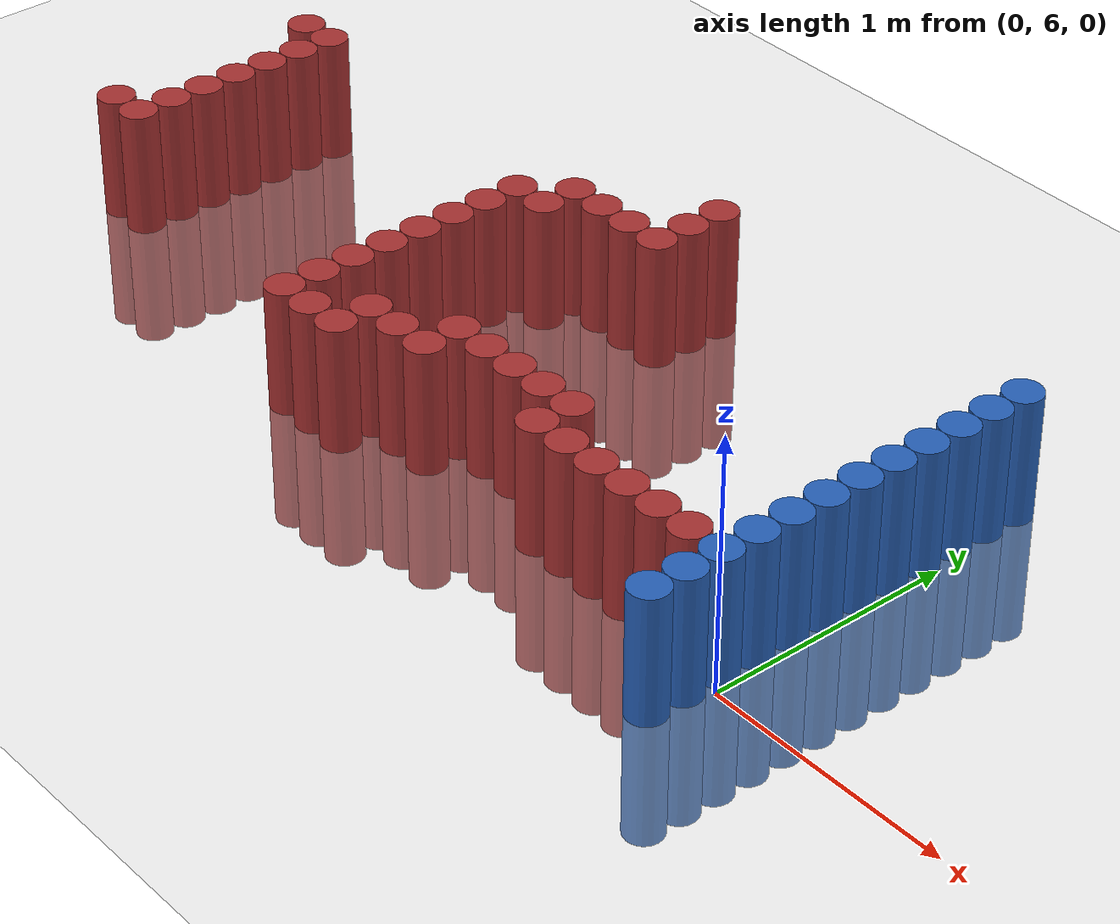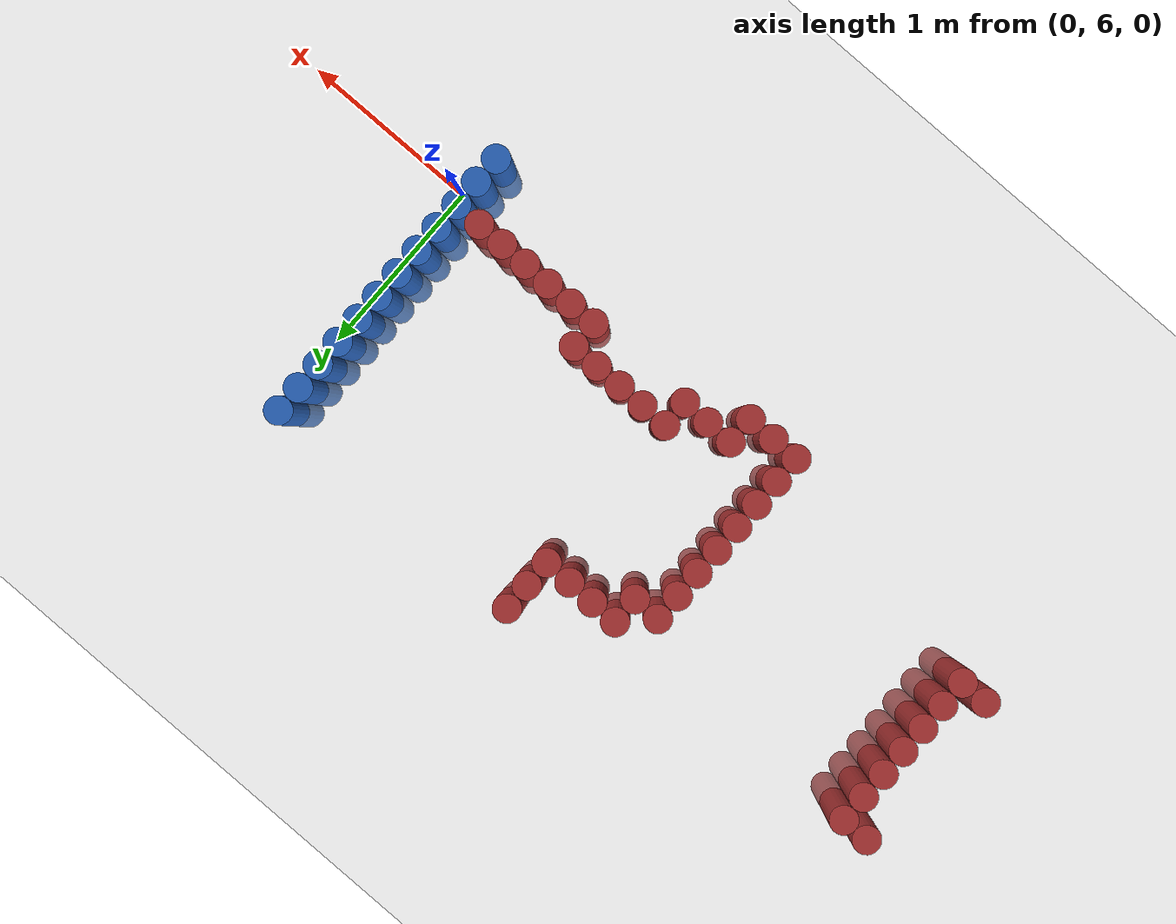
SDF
<sdf version="1.6">
 <world name="default">
  <model name="ground_plane">
   <static>1</static>
   <link name="link">
    <collision name="collision">
     <geometry><plane><normal>0 0 1</normal><size>100 100</size></plane></geometry>
     <surface><friction><ode><mu>100</mu><mu2>50</mu2></ode></friction></surface>
    </collision>
    <visual name="visual">
     <cast_shadows>0</cast_shadows>
     <geometry><plane><normal>0 0 1</normal><size>100 100</size></plane></geometry>
     <material>
      <script><uri>file://media/materials/scripts/gazebo.material</uri><name>Gazebo/Grey</name></script>
     </material>
    </visual>
   </link>
  </model>
  <model name="unit_cylinder_152">
   <static>1</static>
   <pose>-3.675000 6.225000 0.000000 0.000000 0.000000 0.000000</pose>
   <link name="link">
    <inertial>
     <mass>1</mass>
     <inertia><ixx>0.145833</ixx><ixy>0</ixy><ixz>0</ixz><iyy>0.145833</iyy><iyz>0</iyz><izz>0.125</izz></inertia>
    </inertial>
    <collision name="collision">
     <geometry><cylinder><radius>0.075000</radius><length>1</length></cylinder></geometry>
    </collision>
    <visual name="visual">
     <geometry><cylinder><radius>0.075000</radius><length>1</length></cylinder></geometry>
     <material>
      <ambient>0.648000 0.192000 0.192000 1</ambient>
      <diffuse>0.648000 0.192000 0.192000 1</diffuse>
     </material>
     <material>
      <script><name>Gazebo/Grey</name><uri>file://media/materials/scripts/gazebo.material</uri></script>
     </material>
    </visual>
   </link>
  </model>
  <model name="unit_cylinder_153">
   <static>1</static>
   <pose>-3.675000 7.125000 0.000000 0.000000 0.000000 0.000000</pose>
   <link name="link">
    <inertial>
     <mass>1</mass>
     <inertia><ixx>0.145833</ixx><ixy>0</ixy><ixz>0</ixz><iyy>0.145833</iyy><iyz>0</iyz><izz>0.125</izz></inertia>
    </inertial>
    <collision name="collision">
     <geometry><cylinder><radius>0.075000</radius><length>1</length></cylinder></geometry>
    </collision>
    <visual name="visual">
     <geometry><cylinder><radius>0.075000</radius><length>1</length></cylinder></geometry>
     <material>
      <ambient>0.648000 0.192000 0.192000 1</ambient>
      <diffuse>0.648000 0.192000 0.192000 1</diffuse>
     </material>
     <material>
      <script><name>Gazebo/Grey</name><uri>file://media/materials/scripts/gazebo.material</uri></script>
     </material>
    </visual>
   </link>
  </model>
  <model name="unit_cylinder_156">
   <static>1</static>
   <pose>-3.525000 6.225000 0.000000 0.000000 0.000000 0.000000</pose>
   <link name="link">
    <inertial>
     <mass>1</mass>
     <inertia><ixx>0.145833</ixx><ixy>0</ixy><ixz>0</ixz><iyy>0.145833</iyy><iyz>0</iyz><izz>0.125</izz></inertia>
    </inertial>
    <collision name="collision">
     <geometry><cylinder><radius>0.075000</radius><length>1</length></cylinder></geometry>
    </collision>
    <visual name="visual">
     <geometry><cylinder><radius>0.075000</radius><length>1</length></cylinder></geometry>
     <material>
      <ambient>0.648000 0.192000 0.192000 1</ambient>
      <diffuse>0.648000 0.192000 0.192000 1</diffuse>
     </material>
     <material>
      <script><name>Gazebo/Grey</name><uri>file://media/materials/scripts/gazebo.material</uri></script>
     </material>
    </visual>
   </link>
  </model>
  <model name="unit_cylinder_157">
   <static>1</static>
   <pose>-3.525000 6.375000 0.000000 0.000000 0.000000 0.000000</pose>
   <link name="link">
    <inertial>
     <mass>1</mass>
     <inertia><ixx>0.145833</ixx><ixy>0</ixy><ixz>0</ixz><iyy>0.145833</iyy><iyz>0</iyz><izz>0.125</izz></inertia>
    </inertial>
    <collision name="collision">
     <geometry><cylinder><radius>0.075000</radius><length>1</length></cylinder></geometry>
    </collision>
    <visual name="visual">
     <geometry><cylinder><radius>0.075000</radius><length>1</length></cylinder></geometry>
     <material>
      <ambient>0.648000 0.192000 0.192000 1</ambient>
      <diffuse>0.648000 0.192000 0.192000 1</diffuse>
     </material>
     <material>
      <script><name>Gazebo/Grey</name><uri>file://media/materials/scripts/gazebo.material</uri></script>
     </material>
    </visual>
   </link>
  </model>
  <model name="unit_cylinder_158">
   <static>1</static>
   <pose>-3.525000 6.525000 0.000000 0.000000 0.000000 0.000000</pose>
   <link name="link">
    <inertial>
     <mass>1</mass>
     <inertia><ixx>0.145833</ixx><ixy>0</ixy><ixz>0</ixz><iyy>0.145833</iyy><iyz>0</iyz><izz>0.125</izz></inertia>
    </inertial>
    <collision name="collision">
     <geometry><cylinder><radius>0.075000</radius><length>1</length></cylinder></geometry>
    </collision>
    <visual name="visual">
     <geometry><cylinder><radius>0.075000</radius><length>1</length></cylinder></geometry>
     <material>
      <ambient>0.648000 0.192000 0.192000 1</ambient>
      <diffuse>0.648000 0.192000 0.192000 1</diffuse>
     </material>
     <material>
      <script><name>Gazebo/Grey</name><uri>file://media/materials/scripts/gazebo.material</uri></script>
     </material>
    </visual>
   </link>
  </model>
  <model name="unit_cylinder_159">
   <static>1</static>
   <pose>-3.525000 6.675000 0.000000 0.000000 0.000000 0.000000</pose>
   <link name="link">
    <inertial>
     <mass>1</mass>
     <inertia><ixx>0.145833</ixx><ixy>0</ixy><ixz>0</ixz><iyy>0.145833</iyy><iyz>0</iyz><izz>0.125</izz></inertia>
    </inertial>
    <collision name="collision">
     <geometry><cylinder><radius>0.075000</radius><length>1</length></cylinder></geometry>
    </collision>
    <visual name="visual">
     <geometry><cylinder><radius>0.075000</radius><length>1</length></cylinder></geometry>
     <material>
      <ambient>0.648000 0.192000 0.192000 1</ambient>
      <diffuse>0.648000 0.192000 0.192000 1</diffuse>
     </material>
     <material>
      <script><name>Gazebo/Grey</name><uri>file://media/materials/scripts/gazebo.material</uri></script>
     </material>
    </visual>
   </link>
  </model>
  <model name="unit_cylinder_160">
   <static>1</static>
   <pose>-3.525000 6.825000 0.000000 0.000000 0.000000 0.000000</pose>
   <link name="link">
    <inertial>
     <mass>1</mass>
     <inertia><ixx>0.145833</ixx><ixy>0</ixy><ixz>0</ixz><iyy>0.145833</iyy><iyz>0</iyz><izz>0.125</izz></inertia>
    </inertial>
    <collision name="collision">
     <geometry><cylinder><radius>0.075000</radius><length>1</length></cylinder></geometry>
    </collision>
    <visual name="visual">
     <geometry><cylinder><radius>0.075000</radius><length>1</length></cylinder></geometry>
     <material>
      <ambient>0.648000 0.192000 0.192000 1</ambient>
      <diffuse>0.648000 0.192000 0.192000 1</diffuse>
     </material>
     <material>
      <script><name>Gazebo/Grey</name><uri>file://media/materials/scripts/gazebo.material</uri></script>
     </material>
    </visual>
   </link>
  </model>
  <model name="unit_cylinder_161">
   <static>1</static>
   <pose>-3.525000 6.975000 0.000000 0.000000 0.000000 0.000000</pose>
   <link name="link">
    <inertial>
     <mass>1</mass>
     <inertia><ixx>0.145833</ixx><ixy>0</ixy><ixz>0</ixz><iyy>0.145833</iyy><iyz>0</iyz><izz>0.125</izz></inertia>
    </inertial>
    <collision name="collision">
     <geometry><cylinder><radius>0.075000</radius><length>1</length></cylinder></geometry>
    </collision>
    <visual name="visual">
     <geometry><cylinder><radius>0.075000</radius><length>1</length></cylinder></geometry>
     <material>
      <ambient>0.648000 0.192000 0.192000 1</ambient>
      <diffuse>0.648000 0.192000 0.192000 1</diffuse>
     </material>
     <material>
      <script><name>Gazebo/Grey</name><uri>file://media/materials/scripts/gazebo.material</uri></script>
     </material>
    </visual>
   </link>
  </model>
  <model name="unit_cylinder_162">
   <static>1</static>
   <pose>-3.525000 7.125000 0.000000 0.000000 0.000000 0.000000</pose>
   <link name="link">
    <inertial>
     <mass>1</mass>
     <inertia><ixx>0.145833</ixx><ixy>0</ixy><ixz>0</ixz><iyy>0.145833</iyy><iyz>0</iyz><izz>0.125</izz></inertia>
    </inertial>
    <collision name="collision">
     <geometry><cylinder><radius>0.075000</radius><length>1</length></cylinder></geometry>
    </collision>
    <visual name="visual">
     <geometry><cylinder><radius>0.075000</radius><length>1</length></cylinder></geometry>
     <material>
      <ambient>0.648000 0.192000 0.192000 1</ambient>
      <diffuse>0.648000 0.192000 0.192000 1</diffuse>
     </material>
     <material>
      <script><name>Gazebo/Grey</name><uri>file://media/materials/scripts/gazebo.material</uri></script>
     </material>
    </visual>
   </link>
  </model>
  <model name="unit_cylinder_168">
   <static>1</static>
   <pose>-2.175000 5.925000 0.000000 0.000000 0.000000 0.000000</pose>
   <link name="link">
    <inertial>
     <mass>1</mass>
     <inertia><ixx>0.145833</ixx><ixy>0</ixy><ixz>0</ixz><iyy>0.145833</iyy><iyz>0</iyz><izz>0.125</izz></inertia>
    </inertial>
    <collision name="collision">
     <geometry><cylinder><radius>0.075000</radius><length>1</length></cylinder></geometry>
    </collision>
    <visual name="visual">
     <geometry><cylinder><radius>0.075000</radius><length>1</length></cylinder></geometry>
     <material>
      <ambient>0.648000 0.192000 0.192000 1</ambient>
      <diffuse>0.648000 0.192000 0.192000 1</diffuse>
     </material>
     <material>
      <script><name>Gazebo/Grey</name><uri>file://media/materials/scripts/gazebo.material</uri></script>
     </material>
    </visual>
   </link>
  </model>
  <model name="unit_cylinder_169">
   <static>1</static>
   <pose>-2.175000 6.075000 0.000000 0.000000 0.000000 0.000000</pose>
   <link name="link">
    <inertial>
     <mass>1</mass>
     <inertia><ixx>0.145833</ixx><ixy>0</ixy><ixz>0</ixz><iyy>0.145833</iyy><iyz>0</iyz><izz>0.125</izz></inertia>
    </inertial>
    <collision name="collision">
     <geometry><cylinder><radius>0.075000</radius><length>1</length></cylinder></geometry>
    </collision>
    <visual name="visual">
     <geometry><cylinder><radius>0.075000</radius><length>1</length></cylinder></geometry>
     <material>
      <ambient>0.648000 0.192000 0.192000 1</ambient>
      <diffuse>0.648000 0.192000 0.192000 1</diffuse>
     </material>
     <material>
      <script><name>Gazebo/Grey</name><uri>file://media/materials/scripts/gazebo.material</uri></script>
     </material>
    </visual>
   </link>
  </model>
  <model name="unit_cylinder_170">
   <static>1</static>
   <pose>-2.175000 6.225000 0.000000 0.000000 0.000000 0.000000</pose>
   <link name="link">
    <inertial>
     <mass>1</mass>
     <inertia><ixx>0.145833</ixx><ixy>0</ixy><ixz>0</ixz><iyy>0.145833</iyy><iyz>0</iyz><izz>0.125</izz></inertia>
    </inertial>
    <collision name="collision">
     <geometry><cylinder><radius>0.075000</radius><length>1</length></cylinder></geometry>
    </collision>
    <visual name="visual">
     <geometry><cylinder><radius>0.075000</radius><length>1</length></cylinder></geometry>
     <material>
      <ambient>0.648000 0.192000 0.192000 1</ambient>
      <diffuse>0.648000 0.192000 0.192000 1</diffuse>
     </material>
     <material>
      <script><name>Gazebo/Grey</name><uri>file://media/materials/scripts/gazebo.material</uri></script>
     </material>
    </visual>
   </link>
  </model>
  <model name="unit_cylinder_171">
   <static>1</static>
   <pose>-2.175000 6.375000 0.000000 0.000000 0.000000 0.000000</pose>
   <link name="link">
    <inertial>
     <mass>1</mass>
     <inertia><ixx>0.145833</ixx><ixy>0</ixy><ixz>0</ixz><iyy>0.145833</iyy><iyz>0</iyz><izz>0.125</izz></inertia>
    </inertial>
    <collision name="collision">
     <geometry><cylinder><radius>0.075000</radius><length>1</length></cylinder></geometry>
    </collision>
    <visual name="visual">
     <geometry><cylinder><radius>0.075000</radius><length>1</length></cylinder></geometry>
     <material>
      <ambient>0.648000 0.192000 0.192000 1</ambient>
      <diffuse>0.648000 0.192000 0.192000 1</diffuse>
     </material>
     <material>
      <script><name>Gazebo/Grey</name><uri>file://media/materials/scripts/gazebo.material</uri></script>
     </material>
    </visual>
   </link>
  </model>
  <model name="unit_cylinder_172">
   <static>1</static>
   <pose>-2.175000 6.525000 0.000000 0.000000 0.000000 0.000000</pose>
   <link name="link">
    <inertial>
     <mass>1</mass>
     <inertia><ixx>0.145833</ixx><ixy>0</ixy><ixz>0</ixz><iyy>0.145833</iyy><iyz>0</iyz><izz>0.125</izz></inertia>
    </inertial>
    <collision name="collision">
     <geometry><cylinder><radius>0.075000</radius><length>1</length></cylinder></geometry>
    </collision>
    <visual name="visual">
     <geometry><cylinder><radius>0.075000</radius><length>1</length></cylinder></geometry>
     <material>
      <ambient>0.648000 0.192000 0.192000 1</ambient>
      <diffuse>0.648000 0.192000 0.192000 1</diffuse>
     </material>
     <material>
      <script><name>Gazebo/Grey</name><uri>file://media/materials/scripts/gazebo.material</uri></script>
     </material>
    </visual>
   </link>
  </model>
  <model name="unit_cylinder_173">
   <static>1</static>
   <pose>-2.175000 6.675000 0.000000 0.000000 0.000000 0.000000</pose>
   <link name="link">
    <inertial>
     <mass>1</mass>
     <inertia><ixx>0.145833</ixx><ixy>0</ixy><ixz>0</ixz><iyy>0.145833</iyy><iyz>0</iyz><izz>0.125</izz></inertia>
    </inertial>
    <collision name="collision">
     <geometry><cylinder><radius>0.075000</radius><length>1</length></cylinder></geometry>
    </collision>
    <visual name="visual">
     <geometry><cylinder><radius>0.075000</radius><length>1</length></cylinder></geometry>
     <material>
      <ambient>0.648000 0.192000 0.192000 1</ambient>
      <diffuse>0.648000 0.192000 0.192000 1</diffuse>
     </material>
     <material>
      <script><name>Gazebo/Grey</name><uri>file://media/materials/scripts/gazebo.material</uri></script>
     </material>
    </visual>
   </link>
  </model>
  <model name="unit_cylinder_174">
   <static>1</static>
   <pose>-2.175000 6.825000 0.000000 0.000000 0.000000 0.000000</pose>
   <link name="link">
    <inertial>
     <mass>1</mass>
     <inertia><ixx>0.145833</ixx><ixy>0</ixy><ixz>0</ixz><iyy>0.145833</iyy><iyz>0</iyz><izz>0.125</izz></inertia>
    </inertial>
    <collision name="collision">
     <geometry><cylinder><radius>0.075000</radius><length>1</length></cylinder></geometry>
    </collision>
    <visual name="visual">
     <geometry><cylinder><radius>0.075000</radius><length>1</length></cylinder></geometry>
     <material>
      <ambient>0.648000 0.192000 0.192000 1</ambient>
      <diffuse>0.648000 0.192000 0.192000 1</diffuse>
     </material>
     <material>
      <script><name>Gazebo/Grey</name><uri>file://media/materials/scripts/gazebo.material</uri></script>
     </material>
    </visual>
   </link>
  </model>
  <model name="unit_cylinder_175">
   <static>1</static>
   <pose>-2.175000 6.975000 0.000000 0.000000 0.000000 0.000000</pose>
   <link name="link">
    <inertial>
     <mass>1</mass>
     <inertia><ixx>0.145833</ixx><ixy>0</ixy><ixz>0</ixz><iyy>0.145833</iyy><iyz>0</iyz><izz>0.125</izz></inertia>
    </inertial>
    <collision name="collision">
     <geometry><cylinder><radius>0.075000</radius><length>1</length></cylinder></geometry>
    </collision>
    <visual name="visual">
     <geometry><cylinder><radius>0.075000</radius><length>1</length></cylinder></geometry>
     <material>
      <ambient>0.648000 0.192000 0.192000 1</ambient>
      <diffuse>0.648000 0.192000 0.192000 1</diffuse>
     </material>
     <material>
      <script><name>Gazebo/Grey</name><uri>file://media/materials/scripts/gazebo.material</uri></script>
     </material>
    </visual>
   </link>
  </model>
  <model name="unit_cylinder_176">
   <static>1</static>
   <pose>-2.025000 5.925000 0.000000 0.000000 0.000000 0.000000</pose>
   <link name="link">
    <inertial>
     <mass>1</mass>
     <inertia><ixx>0.145833</ixx><ixy>0</ixy><ixz>0</ixz><iyy>0.145833</iyy><iyz>0</iyz><izz>0.125</izz></inertia>
    </inertial>
    <collision name="collision">
     <geometry><cylinder><radius>0.075000</radius><length>1</length></cylinder></geometry>
    </collision>
    <visual name="visual">
     <geometry><cylinder><radius>0.075000</radius><length>1</length></cylinder></geometry>
     <material>
      <ambient>0.648000 0.192000 0.192000 1</ambient>
      <diffuse>0.648000 0.192000 0.192000 1</diffuse>
     </material>
     <material>
      <script><name>Gazebo/Grey</name><uri>file://media/materials/scripts/gazebo.material</uri></script>
     </material>
    </visual>
   </link>
  </model>
  <model name="unit_cylinder_177">
   <static>1</static>
   <pose>-2.025000 6.975000 0.000000 0.000000 0.000000 0.000000</pose>
   <link name="link">
    <inertial>
     <mass>1</mass>
     <inertia><ixx>0.145833</ixx><ixy>0</ixy><ixz>0</ixz><iyy>0.145833</iyy><iyz>0</iyz><izz>0.125</izz></inertia>
    </inertial>
    <collision name="collision">
     <geometry><cylinder><radius>0.075000</radius><length>1</length></cylinder></geometry>
    </collision>
    <visual name="visual">
     <geometry><cylinder><radius>0.075000</radius><length>1</length></cylinder></geometry>
     <material>
      <ambient>0.648000 0.192000 0.192000 1</ambient>
      <diffuse>0.648000 0.192000 0.192000 1</diffuse>
     </material>
     <material>
      <script><name>Gazebo/Grey</name><uri>file://media/materials/scripts/gazebo.material</uri></script>
     </material>
    </visual>
   </link>
  </model>
  <model name="unit_cylinder_178">
   <static>1</static>
   <pose>-2.025000 7.125000 0.000000 0.000000 0.000000 0.000000</pose>
   <link name="link">
    <inertial>
     <mass>1</mass>
     <inertia><ixx>0.145833</ixx><ixy>0</ixy><ixz>0</ixz><iyy>0.145833</iyy><iyz>0</iyz><izz>0.125</izz></inertia>
    </inertial>
    <collision name="collision">
     <geometry><cylinder><radius>0.075000</radius><length>1</length></cylinder></geometry>
    </collision>
    <visual name="visual">
     <geometry><cylinder><radius>0.075000</radius><length>1</length></cylinder></geometry>
     <material>
      <ambient>0.648000 0.192000 0.192000 1</ambient>
      <diffuse>0.648000 0.192000 0.192000 1</diffuse>
     </material>
     <material>
      <script><name>Gazebo/Grey</name><uri>file://media/materials/scripts/gazebo.material</uri></script>
     </material>
    </visual>
   </link>
  </model>
  <model name="unit_cylinder_179">
   <static>1</static>
   <pose>-1.875000 5.925000 0.000000 0.000000 0.000000 0.000000</pose>
   <link name="link">
    <inertial>
     <mass>1</mass>
     <inertia><ixx>0.145833</ixx><ixy>0</ixy><ixz>0</ixz><iyy>0.145833</iyy><iyz>0</iyz><izz>0.125</izz></inertia>
    </inertial>
    <collision name="collision">
     <geometry><cylinder><radius>0.075000</radius><length>1</length></cylinder></geometry>
    </collision>
    <visual name="visual">
     <geometry><cylinder><radius>0.075000</radius><length>1</length></cylinder></geometry>
     <material>
      <ambient>0.648000 0.192000 0.192000 1</ambient>
      <diffuse>0.648000 0.192000 0.192000 1</diffuse>
     </material>
     <material>
      <script><name>Gazebo/Grey</name><uri>file://media/materials/scripts/gazebo.material</uri></script>
     </material>
    </visual>
   </link>
  </model>
  <model name="unit_cylinder_180">
   <static>1</static>
   <pose>-1.875000 6.075000 0.000000 0.000000 0.000000 0.000000</pose>
   <link name="link">
    <inertial>
     <mass>1</mass>
     <inertia><ixx>0.145833</ixx><ixy>0</ixy><ixz>0</ixz><iyy>0.145833</iyy><iyz>0</iyz><izz>0.125</izz></inertia>
    </inertial>
    <collision name="collision">
     <geometry><cylinder><radius>0.075000</radius><length>1</length></cylinder></geometry>
    </collision>
    <visual name="visual">
     <geometry><cylinder><radius>0.075000</radius><length>1</length></cylinder></geometry>
     <material>
      <ambient>0.648000 0.192000 0.192000 1</ambient>
      <diffuse>0.648000 0.192000 0.192000 1</diffuse>
     </material>
     <material>
      <script><name>Gazebo/Grey</name><uri>file://media/materials/scripts/gazebo.material</uri></script>
     </material>
    </visual>
   </link>
  </model>
  <model name="unit_cylinder_181">
   <static>1</static>
   <pose>-1.875000 7.125000 0.000000 0.000000 0.000000 0.000000</pose>
   <link name="link">
    <inertial>
     <mass>1</mass>
     <inertia><ixx>0.145833</ixx><ixy>0</ixy><ixz>0</ixz><iyy>0.145833</iyy><iyz>0</iyz><izz>0.125</izz></inertia>
    </inertial>
    <collision name="collision">
     <geometry><cylinder><radius>0.075000</radius><length>1</length></cylinder></geometry>
    </collision>
    <visual name="visual">
     <geometry><cylinder><radius>0.075000</radius><length>1</length></cylinder></geometry>
     <material>
      <ambient>0.648000 0.192000 0.192000 1</ambient>
      <diffuse>0.648000 0.192000 0.192000 1</diffuse>
     </material>
     <material>
      <script><name>Gazebo/Grey</name><uri>file://media/materials/scripts/gazebo.material</uri></script>
     </material>
    </visual>
   </link>
  </model>
  <model name="unit_cylinder_182">
   <static>1</static>
   <pose>-1.725000 6.075000 0.000000 0.000000 0.000000 0.000000</pose>
   <link name="link">
    <inertial>
     <mass>1</mass>
     <inertia><ixx>0.145833</ixx><ixy>0</ixy><ixz>0</ixz><iyy>0.145833</iyy><iyz>0</iyz><izz>0.125</izz></inertia>
    </inertial>
    <collision name="collision">
     <geometry><cylinder><radius>0.075000</radius><length>1</length></cylinder></geometry>
    </collision>
    <visual name="visual">
     <geometry><cylinder><radius>0.075000</radius><length>1</length></cylinder></geometry>
     <material>
      <ambient>0.648000 0.192000 0.192000 1</ambient>
      <diffuse>0.648000 0.192000 0.192000 1</diffuse>
     </material>
     <material>
      <script><name>Gazebo/Grey</name><uri>file://media/materials/scripts/gazebo.material</uri></script>
     </material>
    </visual>
   </link>
  </model>
  <model name="unit_cylinder_183">
   <static>1</static>
   <pose>-1.725000 7.125000 0.000000 0.000000 0.000000 0.000000</pose>
   <link name="link">
    <inertial>
     <mass>1</mass>
     <inertia><ixx>0.145833</ixx><ixy>0</ixy><ixz>0</ixz><iyy>0.145833</iyy><iyz>0</iyz><izz>0.125</izz></inertia>
    </inertial>
    <collision name="collision">
     <geometry><cylinder><radius>0.075000</radius><length>1</length></cylinder></geometry>
    </collision>
    <visual name="visual">
     <geometry><cylinder><radius>0.075000</radius><length>1</length></cylinder></geometry>
     <material>
      <ambient>0.648000 0.192000 0.192000 1</ambient>
      <diffuse>0.648000 0.192000 0.192000 1</diffuse>
     </material>
     <material>
      <script><name>Gazebo/Grey</name><uri>file://media/materials/scripts/gazebo.material</uri></script>
     </material>
    </visual>
   </link>
  </model>
  <model name="unit_cylinder_186">
   <static>1</static>
   <pose>-1.575000 6.075000 0.000000 0.000000 0.000000 0.000000</pose>
   <link name="link">
    <inertial>
     <mass>1</mass>
     <inertia><ixx>0.145833</ixx><ixy>0</ixy><ixz>0</ixz><iyy>0.145833</iyy><iyz>0</iyz><izz>0.125</izz></inertia>
    </inertial>
    <collision name="collision">
     <geometry><cylinder><radius>0.075000</radius><length>1</length></cylinder></geometry>
    </collision>
    <visual name="visual">
     <geometry><cylinder><radius>0.075000</radius><length>1</length></cylinder></geometry>
     <material>
      <ambient>0.648000 0.192000 0.192000 1</ambient>
      <diffuse>0.648000 0.192000 0.192000 1</diffuse>
     </material>
     <material>
      <script><name>Gazebo/Grey</name><uri>file://media/materials/scripts/gazebo.material</uri></script>
     </material>
    </visual>
   </link>
  </model>
  <model name="unit_cylinder_187">
   <static>1</static>
   <pose>-1.575000 6.225000 0.000000 0.000000 0.000000 0.000000</pose>
   <link name="link">
    <inertial>
     <mass>1</mass>
     <inertia><ixx>0.145833</ixx><ixy>0</ixy><ixz>0</ixz><iyy>0.145833</iyy><iyz>0</iyz><izz>0.125</izz></inertia>
    </inertial>
    <collision name="collision">
     <geometry><cylinder><radius>0.075000</radius><length>1</length></cylinder></geometry>
    </collision>
    <visual name="visual">
     <geometry><cylinder><radius>0.075000</radius><length>1</length></cylinder></geometry>
     <material>
      <ambient>0.648000 0.192000 0.192000 1</ambient>
      <diffuse>0.648000 0.192000 0.192000 1</diffuse>
     </material>
     <material>
      <script><name>Gazebo/Grey</name><uri>file://media/materials/scripts/gazebo.material</uri></script>
     </material>
    </visual>
   </link>
  </model>
  <model name="unit_cylinder_188">
   <static>1</static>
   <pose>-1.575000 7.125000 0.000000 0.000000 0.000000 0.000000</pose>
   <link name="link">
    <inertial>
     <mass>1</mass>
     <inertia><ixx>0.145833</ixx><ixy>0</ixy><ixz>0</ixz><iyy>0.145833</iyy><iyz>0</iyz><izz>0.125</izz></inertia>
    </inertial>
    <collision name="collision">
     <geometry><cylinder><radius>0.075000</radius><length>1</length></cylinder></geometry>
    </collision>
    <visual name="visual">
     <geometry><cylinder><radius>0.075000</radius><length>1</length></cylinder></geometry>
     <material>
      <ambient>0.648000 0.192000 0.192000 1</ambient>
      <diffuse>0.648000 0.192000 0.192000 1</diffuse>
     </material>
     <material>
      <script><name>Gazebo/Grey</name><uri>file://media/materials/scripts/gazebo.material</uri></script>
     </material>
    </visual>
   </link>
  </model>
  <model name="unit_cylinder_189">
   <static>1</static>
   <pose>-1.575000 7.275000 0.000000 0.000000 0.000000 0.000000</pose>
   <link name="link">
    <inertial>
     <mass>1</mass>
     <inertia><ixx>0.145833</ixx><ixy>0</ixy><ixz>0</ixz><iyy>0.145833</iyy><iyz>0</iyz><izz>0.125</izz></inertia>
    </inertial>
    <collision name="collision">
     <geometry><cylinder><radius>0.075000</radius><length>1</length></cylinder></geometry>
    </collision>
    <visual name="visual">
     <geometry><cylinder><radius>0.075000</radius><length>1</length></cylinder></geometry>
     <material>
      <ambient>0.648000 0.192000 0.192000 1</ambient>
      <diffuse>0.648000 0.192000 0.192000 1</diffuse>
     </material>
     <material>
      <script><name>Gazebo/Grey</name><uri>file://media/materials/scripts/gazebo.material</uri></script>
     </material>
    </visual>
   </link>
  </model>
  <model name="unit_cylinder_190">
   <static>1</static>
   <pose>-1.575000 7.425000 0.000000 0.000000 0.000000 0.000000</pose>
   <link name="link">
    <inertial>
     <mass>1</mass>
     <inertia><ixx>0.145833</ixx><ixy>0</ixy><ixz>0</ixz><iyy>0.145833</iyy><iyz>0</iyz><izz>0.125</izz></inertia>
    </inertial>
    <collision name="collision">
     <geometry><cylinder><radius>0.075000</radius><length>1</length></cylinder></geometry>
    </collision>
    <visual name="visual">
     <geometry><cylinder><radius>0.075000</radius><length>1</length></cylinder></geometry>
     <material>
      <ambient>0.648000 0.192000 0.192000 1</ambient>
      <diffuse>0.648000 0.192000 0.192000 1</diffuse>
     </material>
     <material>
      <script><name>Gazebo/Grey</name><uri>file://media/materials/scripts/gazebo.material</uri></script>
     </material>
    </visual>
   </link>
  </model>
  <model name="unit_cylinder_202">
   <static>1</static>
   <pose>-1.425000 6.225000 0.000000 0.000000 0.000000 0.000000</pose>
   <link name="link">
    <inertial>
     <mass>1</mass>
     <inertia><ixx>0.145833</ixx><ixy>0</ixy><ixz>0</ixz><iyy>0.145833</iyy><iyz>0</iyz><izz>0.125</izz></inertia>
    </inertial>
    <collision name="collision">
     <geometry><cylinder><radius>0.075000</radius><length>1</length></cylinder></geometry>
    </collision>
    <visual name="visual">
     <geometry><cylinder><radius>0.075000</radius><length>1</length></cylinder></geometry>
     <material>
      <ambient>0.648000 0.192000 0.192000 1</ambient>
      <diffuse>0.648000 0.192000 0.192000 1</diffuse>
     </material>
     <material>
      <script><name>Gazebo/Grey</name><uri>file://media/materials/scripts/gazebo.material</uri></script>
     </material>
    </visual>
   </link>
  </model>
  <model name="unit_cylinder_204">
   <static>1</static>
   <pose>-1.275000 6.225000 0.000000 0.000000 0.000000 0.000000</pose>
   <link name="link">
    <inertial>
     <mass>1</mass>
     <inertia><ixx>0.145833</ixx><ixy>0</ixy><ixz>0</ixz><iyy>0.145833</iyy><iyz>0</iyz><izz>0.125</izz></inertia>
    </inertial>
    <collision name="collision">
     <geometry><cylinder><radius>0.075000</radius><length>1</length></cylinder></geometry>
    </collision>
    <visual name="visual">
     <geometry><cylinder><radius>0.075000</radius><length>1</length></cylinder></geometry>
     <material>
      <ambient>0.648000 0.192000 0.192000 1</ambient>
      <diffuse>0.648000 0.192000 0.192000 1</diffuse>
     </material>
     <material>
      <script><name>Gazebo/Grey</name><uri>file://media/materials/scripts/gazebo.material</uri></script>
     </material>
    </visual>
   </link>
  </model>
  <model name="unit_cylinder_210">
   <static>1</static>
   <pose>-1.125000 6.225000 0.000000 0.000000 0.000000 0.000000</pose>
   <link name="link">
    <inertial>
     <mass>1</mass>
     <inertia><ixx>0.145833</ixx><ixy>0</ixy><ixz>0</ixz><iyy>0.145833</iyy><iyz>0</iyz><izz>0.125</izz></inertia>
    </inertial>
    <collision name="collision">
     <geometry><cylinder><radius>0.075000</radius><length>1</length></cylinder></geometry>
    </collision>
    <visual name="visual">
     <geometry><cylinder><radius>0.075000</radius><length>1</length></cylinder></geometry>
     <material>
      <ambient>0.648000 0.192000 0.192000 1</ambient>
      <diffuse>0.648000 0.192000 0.192000 1</diffuse>
     </material>
     <material>
      <script><name>Gazebo/Grey</name><uri>file://media/materials/scripts/gazebo.material</uri></script>
     </material>
    </visual>
   </link>
  </model>
  <model name="unit_cylinder_213">
   <static>1</static>
   <pose>-0.975000 6.075000 0.000000 0.000000 0.000000 0.000000</pose>
   <link name="link">
    <inertial>
     <mass>1</mass>
     <inertia><ixx>0.145833</ixx><ixy>0</ixy><ixz>0</ixz><iyy>0.145833</iyy><iyz>0</iyz><izz>0.125</izz></inertia>
    </inertial>
    <collision name="collision">
     <geometry><cylinder><radius>0.075000</radius><length>1</length></cylinder></geometry>
    </collision>
    <visual name="visual">
     <geometry><cylinder><radius>0.075000</radius><length>1</length></cylinder></geometry>
     <material>
      <ambient>0.648000 0.192000 0.192000 1</ambient>
      <diffuse>0.648000 0.192000 0.192000 1</diffuse>
     </material>
     <material>
      <script><name>Gazebo/Grey</name><uri>file://media/materials/scripts/gazebo.material</uri></script>
     </material>
    </visual>
   </link>
  </model>
  <model name="unit_cylinder_214">
   <static>1</static>
   <pose>-0.975000 6.225000 0.000000 0.000000 0.000000 0.000000</pose>
   <link name="link">
    <inertial>
     <mass>1</mass>
     <inertia><ixx>0.145833</ixx><ixy>0</ixy><ixz>0</ixz><iyy>0.145833</iyy><iyz>0</iyz><izz>0.125</izz></inertia>
    </inertial>
    <collision name="collision">
     <geometry><cylinder><radius>0.075000</radius><length>1</length></cylinder></geometry>
    </collision>
    <visual name="visual">
     <geometry><cylinder><radius>0.075000</radius><length>1</length></cylinder></geometry>
     <material>
      <ambient>0.648000 0.192000 0.192000 1</ambient>
      <diffuse>0.648000 0.192000 0.192000 1</diffuse>
     </material>
     <material>
      <script><name>Gazebo/Grey</name><uri>file://media/materials/scripts/gazebo.material</uri></script>
     </material>
    </visual>
   </link>
  </model>
  <model name="unit_cylinder_217">
   <static>1</static>
   <pose>-0.825000 6.075000 0.000000 0.000000 0.000000 0.000000</pose>
   <link name="link">
    <inertial>
     <mass>1</mass>
     <inertia><ixx>0.145833</ixx><ixy>0</ixy><ixz>0</ixz><iyy>0.145833</iyy><iyz>0</iyz><izz>0.125</izz></inertia>
    </inertial>
    <collision name="collision">
     <geometry><cylinder><radius>0.075000</radius><length>1</length></cylinder></geometry>
    </collision>
    <visual name="visual">
     <geometry><cylinder><radius>0.075000</radius><length>1</length></cylinder></geometry>
     <material>
      <ambient>0.648000 0.192000 0.192000 1</ambient>
      <diffuse>0.648000 0.192000 0.192000 1</diffuse>
     </material>
     <material>
      <script><name>Gazebo/Grey</name><uri>file://media/materials/scripts/gazebo.material</uri></script>
     </material>
    </visual>
   </link>
  </model>
  <model name="unit_cylinder_221">
   <static>1</static>
   <pose>-0.675000 6.075000 0.000000 0.000000 0.000000 0.000000</pose>
   <link name="link">
    <inertial>
     <mass>1</mass>
     <inertia><ixx>0.145833</ixx><ixy>0</ixy><ixz>0</ixz><iyy>0.145833</iyy><iyz>0</iyz><izz>0.125</izz></inertia>
    </inertial>
    <collision name="collision">
     <geometry><cylinder><radius>0.075000</radius><length>1</length></cylinder></geometry>
    </collision>
    <visual name="visual">
     <geometry><cylinder><radius>0.075000</radius><length>1</length></cylinder></geometry>
     <material>
      <ambient>0.648000 0.192000 0.192000 1</ambient>
      <diffuse>0.648000 0.192000 0.192000 1</diffuse>
     </material>
     <material>
      <script><name>Gazebo/Grey</name><uri>file://media/materials/scripts/gazebo.material</uri></script>
     </material>
    </visual>
   </link>
  </model>
  <model name="unit_cylinder_224">
   <static>1</static>
   <pose>-0.525000 6.075000 0.000000 0.000000 0.000000 0.000000</pose>
   <link name="link">
    <inertial>
     <mass>1</mass>
     <inertia><ixx>0.145833</ixx><ixy>0</ixy><ixz>0</ixz><iyy>0.145833</iyy><iyz>0</iyz><izz>0.125</izz></inertia>
    </inertial>
    <collision name="collision">
     <geometry><cylinder><radius>0.075000</radius><length>1</length></cylinder></geometry>
    </collision>
    <visual name="visual">
     <geometry><cylinder><radius>0.075000</radius><length>1</length></cylinder></geometry>
     <material>
      <ambient>0.648000 0.192000 0.192000 1</ambient>
      <diffuse>0.648000 0.192000 0.192000 1</diffuse>
     </material>
     <material>
      <script><name>Gazebo/Grey</name><uri>file://media/materials/scripts/gazebo.material</uri></script>
     </material>
    </visual>
   </link>
  </model>
  <model name="unit_cylinder_226">
   <static>1</static>
   <pose>-0.375000 6.075000 0.000000 0.000000 0.000000 0.000000</pose>
   <link name="link">
    <inertial>
     <mass>1</mass>
     <inertia><ixx>0.145833</ixx><ixy>0</ixy><ixz>0</ixz><iyy>0.145833</iyy><iyz>0</iyz><izz>0.125</izz></inertia>
    </inertial>
    <collision name="collision">
     <geometry><cylinder><radius>0.075000</radius><length>1</length></cylinder></geometry>
    </collision>
    <visual name="visual">
     <geometry><cylinder><radius>0.075000</radius><length>1</length></cylinder></geometry>
     <material>
      <ambient>0.648000 0.192000 0.192000 1</ambient>
      <diffuse>0.648000 0.192000 0.192000 1</diffuse>
     </material>
     <material>
      <script><name>Gazebo/Grey</name><uri>file://media/materials/scripts/gazebo.material</uri></script>
     </material>
    </visual>
   </link>
  </model>
  <model name="unit_cylinder_228">
   <static>1</static>
   <pose>-0.225000 6.075000 0.000000 0.000000 0.000000 0.000000</pose>
   <link name="link">
    <inertial>
     <mass>1</mass>
     <inertia><ixx>0.145833</ixx><ixy>0</ixy><ixz>0</ixz><iyy>0.145833</iyy><iyz>0</iyz><izz>0.125</izz></inertia>
    </inertial>
    <collision name="collision">
     <geometry><cylinder><radius>0.075000</radius><length>1</length></cylinder></geometry>
    </collision>
    <visual name="visual">
     <geometry><cylinder><radius>0.075000</radius><length>1</length></cylinder></geometry>
     <material>
      <ambient>0.648000 0.192000 0.192000 1</ambient>
      <diffuse>0.648000 0.192000 0.192000 1</diffuse>
     </material>
     <material>
      <script><name>Gazebo/Grey</name><uri>file://media/materials/scripts/gazebo.material</uri></script>
     </material>
    </visual>
   </link>
  </model>
  <model name="unit_cylinder_234">
   <static>1</static>
   <pose>-0.075000 5.775000 0.000000 0.000000 0.000000 0.000000</pose>
   <link name="link">
    <inertial>
     <mass>1</mass>
     <inertia><ixx>0.145833</ixx><ixy>0</ixy><ixz>0</ixz><iyy>0.145833</iyy><iyz>0</iyz><izz>0.125</izz></inertia>
    </inertial>
    <collision name="collision">
     <geometry><cylinder><radius>0.075000</radius><length>1</length></cylinder></geometry>
    </collision>
    <visual name="visual">
     <geometry><cylinder><radius>0.075000</radius><length>1</length></cylinder></geometry>
     <material>
      <ambient>0.152000 0.379000 0.720000 1</ambient>
      <diffuse>0.152000 0.379000 0.720000 1</diffuse>
     </material>
     <material>
      <script><name>Gazebo/Grey</name><uri>file://media/materials/scripts/gazebo.material</uri></script>
     </material>
    </visual>
   </link>
  </model>
  <model name="unit_cylinder_235">
   <static>1</static>
   <pose>-0.075000 5.925000 0.000000 0.000000 0.000000 0.000000</pose>
   <link name="link">
    <inertial>
     <mass>1</mass>
     <inertia><ixx>0.145833</ixx><ixy>0</ixy><ixz>0</ixz><iyy>0.145833</iyy><iyz>0</iyz><izz>0.125</izz></inertia>
    </inertial>
    <collision name="collision">
     <geometry><cylinder><radius>0.075000</radius><length>1</length></cylinder></geometry>
    </collision>
    <visual name="visual">
     <geometry><cylinder><radius>0.075000</radius><length>1</length></cylinder></geometry>
     <material>
      <ambient>0.152000 0.379000 0.720000 1</ambient>
      <diffuse>0.152000 0.379000 0.720000 1</diffuse>
     </material>
     <material>
      <script><name>Gazebo/Grey</name><uri>file://media/materials/scripts/gazebo.material</uri></script>
     </material>
    </visual>
   </link>
  </model>
  <model name="unit_cylinder_236">
   <static>1</static>
   <pose>-0.075000 6.075000 0.000000 0.000000 0.000000 0.000000</pose>
   <link name="link">
    <inertial>
     <mass>1</mass>
     <inertia><ixx>0.145833</ixx><ixy>0</ixy><ixz>0</ixz><iyy>0.145833</iyy><iyz>0</iyz><izz>0.125</izz></inertia>
    </inertial>
    <collision name="collision">
     <geometry><cylinder><radius>0.075000</radius><length>1</length></cylinder></geometry>
    </collision>
    <visual name="visual">
     <geometry><cylinder><radius>0.075000</radius><length>1</length></cylinder></geometry>
     <material>
      <ambient>0.152000 0.379000 0.720000 1</ambient>
      <diffuse>0.152000 0.379000 0.720000 1</diffuse>
     </material>
     <material>
      <script><name>Gazebo/Grey</name><uri>file://media/materials/scripts/gazebo.material</uri></script>
     </material>
    </visual>
   </link>
  </model>
  <model name="unit_cylinder_237">
   <static>1</static>
   <pose>-0.075000 6.225000 0.000000 0.000000 0.000000 0.000000</pose>
   <link name="link">
    <inertial>
     <mass>1</mass>
     <inertia><ixx>0.145833</ixx><ixy>0</ixy><ixz>0</ixz><iyy>0.145833</iyy><iyz>0</iyz><izz>0.125</izz></inertia>
    </inertial>
    <collision name="collision">
     <geometry><cylinder><radius>0.075000</radius><length>1</length></cylinder></geometry>
    </collision>
    <visual name="visual">
     <geometry><cylinder><radius>0.075000</radius><length>1</length></cylinder></geometry>
     <material>
      <ambient>0.152000 0.379000 0.720000 1</ambient>
      <diffuse>0.152000 0.379000 0.720000 1</diffuse>
     </material>
     <material>
      <script><name>Gazebo/Grey</name><uri>file://media/materials/scripts/gazebo.material</uri></script>
     </material>
    </visual>
   </link>
  </model>
  <model name="unit_cylinder_238">
   <static>1</static>
   <pose>-0.075000 6.375000 0.000000 0.000000 0.000000 0.000000</pose>
   <link name="link">
    <inertial>
     <mass>1</mass>
     <inertia><ixx>0.145833</ixx><ixy>0</ixy><ixz>0</ixz><iyy>0.145833</iyy><iyz>0</iyz><izz>0.125</izz></inertia>
    </inertial>
    <collision name="collision">
     <geometry><cylinder><radius>0.075000</radius><length>1</length></cylinder></geometry>
    </collision>
    <visual name="visual">
     <geometry><cylinder><radius>0.075000</radius><length>1</length></cylinder></geometry>
     <material>
      <ambient>0.152000 0.379000 0.720000 1</ambient>
      <diffuse>0.152000 0.379000 0.720000 1</diffuse>
     </material>
     <material>
      <script><name>Gazebo/Grey</name><uri>file://media/materials/scripts/gazebo.material</uri></script>
     </material>
    </visual>
   </link>
  </model>
  <model name="unit_cylinder_239">
   <static>1</static>
   <pose>-0.075000 6.525000 0.000000 0.000000 0.000000 0.000000</pose>
   <link name="link">
    <inertial>
     <mass>1</mass>
     <inertia><ixx>0.145833</ixx><ixy>0</ixy><ixz>0</ixz><iyy>0.145833</iyy><iyz>0</iyz><izz>0.125</izz></inertia>
    </inertial>
    <collision name="collision">
     <geometry><cylinder><radius>0.075000</radius><length>1</length></cylinder></geometry>
    </collision>
    <visual name="visual">
     <geometry><cylinder><radius>0.075000</radius><length>1</length></cylinder></geometry>
     <material>
      <ambient>0.152000 0.379000 0.720000 1</ambient>
      <diffuse>0.152000 0.379000 0.720000 1</diffuse>
     </material>
     <material>
      <script><name>Gazebo/Grey</name><uri>file://media/materials/scripts/gazebo.material</uri></script>
     </material>
    </visual>
   </link>
  </model>
  <model name="unit_cylinder_240">
   <static>1</static>
   <pose>-0.075000 6.675000 0.000000 0.000000 0.000000 0.000000</pose>
   <link name="link">
    <inertial>
     <mass>1</mass>
     <inertia><ixx>0.145833</ixx><ixy>0</ixy><ixz>0</ixz><iyy>0.145833</iyy><iyz>0</iyz><izz>0.125</izz></inertia>
    </inertial>
    <collision name="collision">
     <geometry><cylinder><radius>0.075000</radius><length>1</length></cylinder></geometry>
    </collision>
    <visual name="visual">
     <geometry><cylinder><radius>0.075000</radius><length>1</length></cylinder></geometry>
     <material>
      <ambient>0.152000 0.379000 0.720000 1</ambient>
      <diffuse>0.152000 0.379000 0.720000 1</diffuse>
     </material>
     <material>
      <script><name>Gazebo/Grey</name><uri>file://media/materials/scripts/gazebo.material</uri></script>
     </material>
    </visual>
   </link>
  </model>
  <model name="unit_cylinder_241">
   <static>1</static>
   <pose>-0.075000 6.825000 0.000000 0.000000 0.000000 0.000000</pose>
   <link name="link">
    <inertial>
     <mass>1</mass>
     <inertia><ixx>0.145833</ixx><ixy>0</ixy><ixz>0</ixz><iyy>0.145833</iyy><iyz>0</iyz><izz>0.125</izz></inertia>
    </inertial>
    <collision name="collision">
     <geometry><cylinder><radius>0.075000</radius><length>1</length></cylinder></geometry>
    </collision>
    <visual name="visual">
     <geometry><cylinder><radius>0.075000</radius><length>1</length></cylinder></geometry>
     <material>
      <ambient>0.152000 0.379000 0.720000 1</ambient>
      <diffuse>0.152000 0.379000 0.720000 1</diffuse>
     </material>
     <material>
      <script><name>Gazebo/Grey</name><uri>file://media/materials/scripts/gazebo.material</uri></script>
     </material>
    </visual>
   </link>
  </model>
  <model name="unit_cylinder_242">
   <static>1</static>
   <pose>-0.075000 6.975000 0.000000 0.000000 0.000000 0.000000</pose>
   <link name="link">
    <inertial>
     <mass>1</mass>
     <inertia><ixx>0.145833</ixx><ixy>0</ixy><ixz>0</ixz><iyy>0.145833</iyy><iyz>0</iyz><izz>0.125</izz></inertia>
    </inertial>
    <collision name="collision">
     <geometry><cylinder><radius>0.075000</radius><length>1</length></cylinder></geometry>
    </collision>
    <visual name="visual">
     <geometry><cylinder><radius>0.075000</radius><length>1</length></cylinder></geometry>
     <material>
      <ambient>0.152000 0.379000 0.720000 1</ambient>
      <diffuse>0.152000 0.379000 0.720000 1</diffuse>
     </material>
     <material>
      <script><name>Gazebo/Grey</name><uri>file://media/materials/scripts/gazebo.material</uri></script>
     </material>
    </visual>
   </link>
  </model>
  <model name="unit_cylinder_243">
   <static>1</static>
   <pose>-0.075000 7.125000 0.000000 0.000000 0.000000 0.000000</pose>
   <link name="link">
    <inertial>
     <mass>1</mass>
     <inertia><ixx>0.145833</ixx><ixy>0</ixy><ixz>0</ixz><iyy>0.145833</iyy><iyz>0</iyz><izz>0.125</izz></inertia>
    </inertial>
    <collision name="collision">
     <geometry><cylinder><radius>0.075000</radius><length>1</length></cylinder></geometry>
    </collision>
    <visual name="visual">
     <geometry><cylinder><radius>0.075000</radius><length>1</length></cylinder></geometry>
     <material>
      <ambient>0.152000 0.379000 0.720000 1</ambient>
      <diffuse>0.152000 0.379000 0.720000 1</diffuse>
     </material>
     <material>
      <script><name>Gazebo/Grey</name><uri>file://media/materials/scripts/gazebo.material</uri></script>
     </material>
    </visual>
   </link>
  </model>
  <model name="unit_cylinder_244">
   <static>1</static>
   <pose>-0.075000 7.275000 0.000000 0.000000 0.000000 0.000000</pose>
   <link name="link">
    <inertial>
     <mass>1</mass>
     <inertia><ixx>0.145833</ixx><ixy>0</ixy><ixz>0</ixz><iyy>0.145833</iyy><iyz>0</iyz><izz>0.125</izz></inertia>
    </inertial>
    <collision name="collision">
     <geometry><cylinder><radius>0.075000</radius><length>1</length></cylinder></geometry>
    </collision>
    <visual name="visual">
     <geometry><cylinder><radius>0.075000</radius><length>1</length></cylinder></geometry>
     <material>
      <ambient>0.152000 0.379000 0.720000 1</ambient>
      <diffuse>0.152000 0.379000 0.720000 1</diffuse>
     </material>
     <material>
      <script><name>Gazebo/Grey</name><uri>file://media/materials/scripts/gazebo.material</uri></script>
     </material>
    </visual>
   </link>
  </model>
  <model name="unit_cylinder_245">
   <static>1</static>
   <pose>-0.075000 7.425000 0.000000 0.000000 0.000000 0.000000</pose>
   <link name="link">
    <inertial>
     <mass>1</mass>
     <inertia><ixx>0.145833</ixx><ixy>0</ixy><ixz>0</ixz><iyy>0.145833</iyy><iyz>0</iyz><izz>0.125</izz></inertia>
    </inertial>
    <collision name="collision">
     <geometry><cylinder><radius>0.075000</radius><length>1</length></cylinder></geometry>
    </collision>
    <visual name="visual">
     <geometry><cylinder><radius>0.075000</radius><length>1</length></cylinder></geometry>
     <material>
      <ambient>0.152000 0.379000 0.720000 1</ambient>
      <diffuse>0.152000 0.379000 0.720000 1</diffuse>
     </material>
     <material>
      <script><name>Gazebo/Grey</name><uri>file://media/materials/scripts/gazebo.material</uri></script>
     </material>
    </visual>
   </link>
  </model>
 </world>
</sdf>
